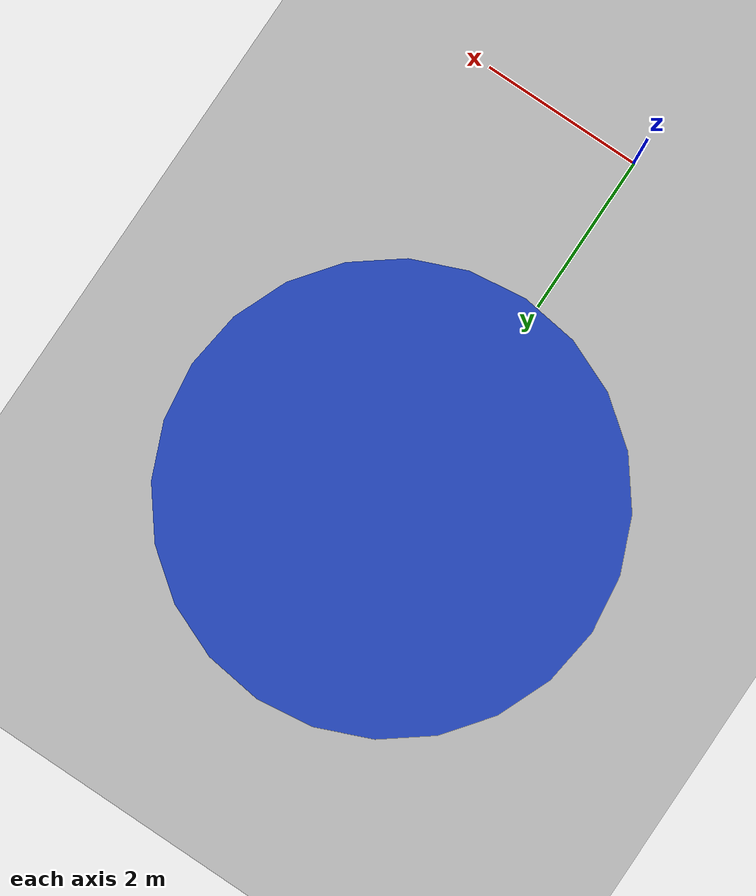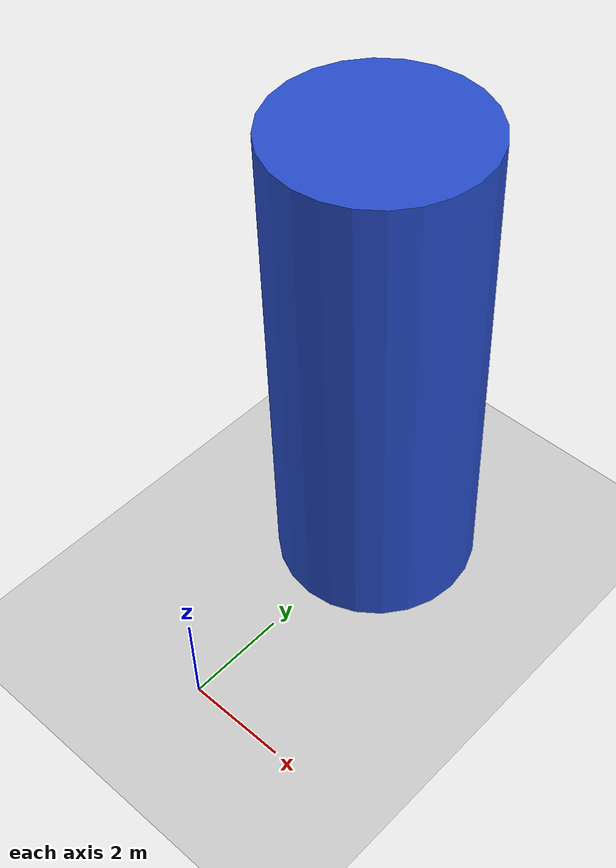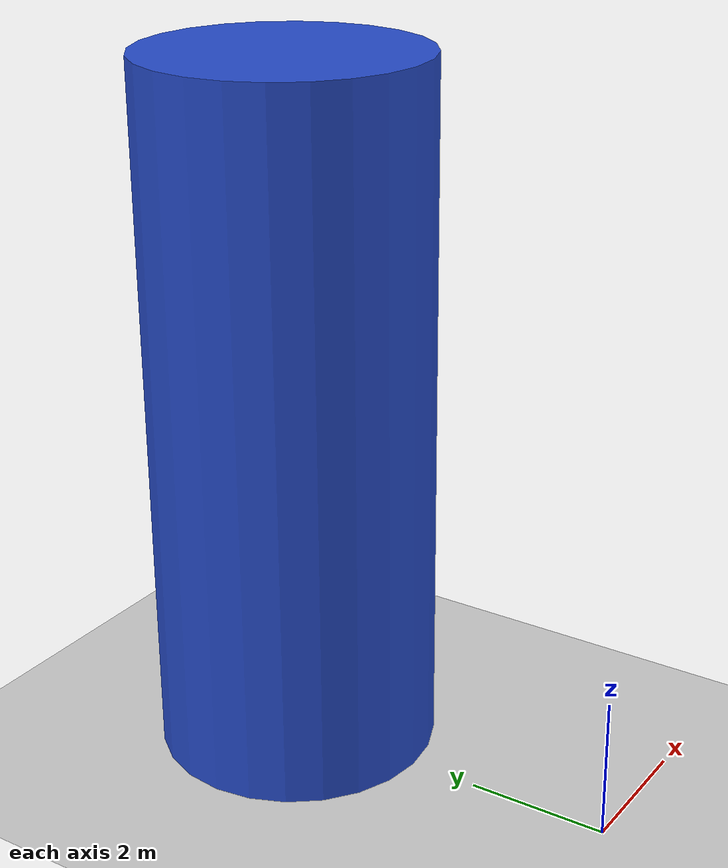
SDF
<sdf version='1.6'>
    <world name='default'>
    <plugin name="disable_physics" filename="libdisable_physics.so"/>
    <light name='sun' type='directional'>
      <cast_shadows>1</cast_shadows>
      <pose frame=''>0 0 10 0 -0 0</pose>
      <diffuse>0.8 0.8 0.8 1</diffuse>
      <specular>0.1 0.1 0.1 1</specular>
      <attenuation>
        <range>1000</range>
        <constant>0.9</constant>
        <linear>0.01</linear>
        <quadratic>0.001</quadratic>
      </attenuation>
      <direction>-0.5 0.5 -1</direction>
    </light>
    <model name='ground_plane'>
      <static>1</static>
      <link name='link'>
        <collision name='collision'>
          <geometry>
            <plane>
              <normal>0 0 1</normal>
              <size>100 100</size>
            </plane>
          </geometry>
          <surface>
            <friction>
              <ode>
                <mu>100</mu>
                <mu2>50</mu2>
              </ode>
              <torsional>
                <ode/>
              </torsional>
            </friction>
            <contact>
              <ode/>
            </contact>
            <bounce/>
          </surface>
          <max_contacts>10</max_contacts>
        </collision>
        <visual name='visual'>
          <cast_shadows>0</cast_shadows>
          <geometry>
            <plane>
              <normal>0 0 1</normal>
              <size>100 100</size>
            </plane>
          </geometry>
          <material>
            <script>
              <uri>file://media/materials/scripts/gazebo.material</uri>
              <name>Gazebo/Grey</name>
            </script>
          </material>
        </visual>
        <self_collide>0</self_collide>
        <kinematic>0</kinematic>
        <gravity>1</gravity>
      </link>
    </model>
    <gravity>0 0 -9.8</gravity>
    <magnetic_field>6e-06 2.3e-05 -4.2e-05</magnetic_field>
    <atmosphere type='adiabatic'/>
    <physics name='default_physics' default='0' type='ode'>
      <max_step_size>0.001</max_step_size>
      <real_time_factor>0.3</real_time_factor>
      <real_time_update_rate>1000</real_time_update_rate>
    </physics>
    <scene>
      <ambient>0.4 0.4 0.4 1</ambient>
      <background>0.7 0.7 0.7 1</background>
      <shadows>1</shadows>
    </scene>
    <spherical_coordinates>
      <surface_model>EARTH_WGS84</surface_model>
      <latitude_deg>0</latitude_deg>
      <longitude_deg>0</longitude_deg>
      <elevation>0</elevation>
      <heading_deg>0</heading_deg>
    </spherical_coordinates>
<model name="Cylinder 0">
      <static>1</static>
      <link name="link">
        <inertial>
          <mass>0.00859</mass>
          <inertia>
            <ixx>0.00922</ixx>
            <ixy>0</ixy>
            <ixz>0</ixz>
            <iyy>0.00922</iyy>
            <iyz>0</iyz>
            <izz>0.00922</izz>
          </inertia>
        </inertial>
        <collision name="collision">
          <geometry>
            <cylinder>
              <length>10</length>
              <radius>2</radius>
            </cylinder>
          </geometry>
          <surface>
            <contact>
              <collide_without_contact>0</collide_without_contact>
              <ode />
            </contact>
            <bounce />
            <friction>
              <torsional>
                <ode />
              </torsional>
              <ode />
            </friction>
          </surface>
          <max_contacts>10</max_contacts>
        </collision>
        <visual name="visual">
          <geometry>
            <cylinder>
              <length>10</length>
              <radius>2</radius>
            </cylinder>
          </geometry>
          <material>
            <script>
              <uri>file://media/materials/scripts/gazebo.material</uri>
              <name>Gazebo/Blue</name>
            </script>
          </material>
        </visual>
        <gravity>0</gravity>
        <self_collide>0</self_collide>
        <kinematic>0</kinematic>
      </link>
      <pose frame="">0 5 5 0 0 0</pose>
    </model>
</world>
</sdf>
